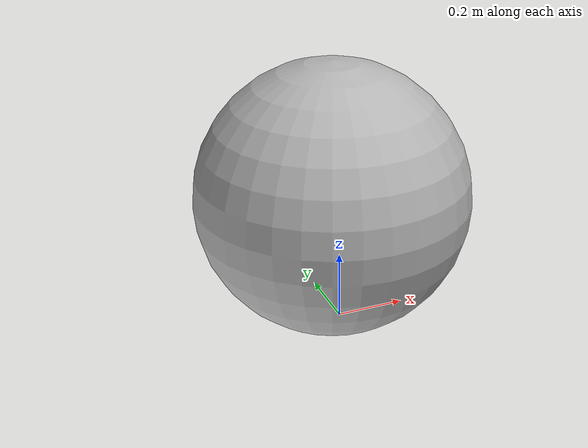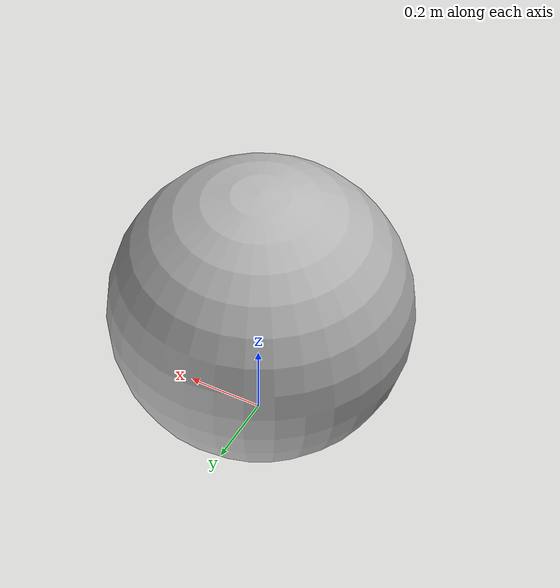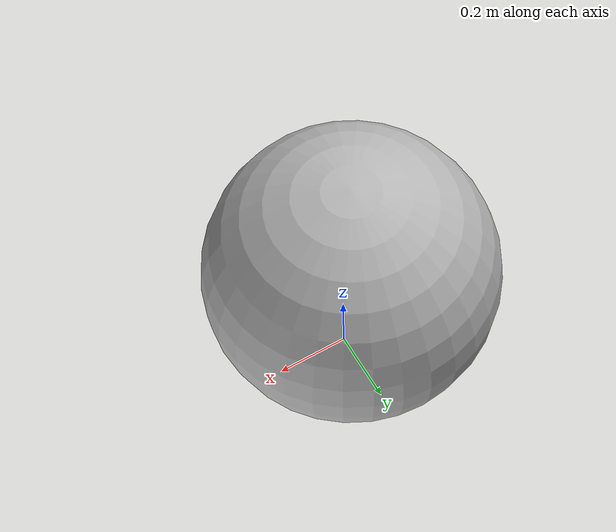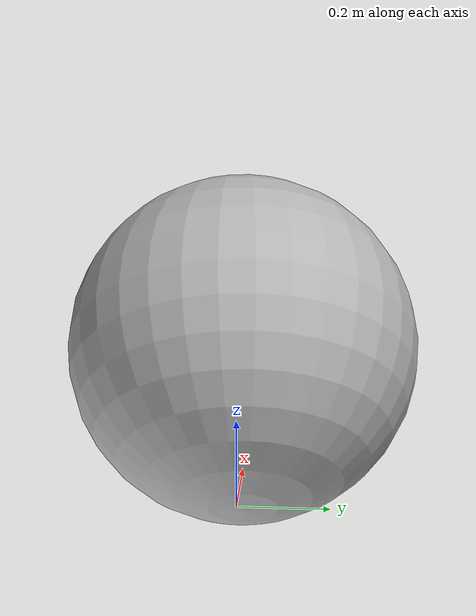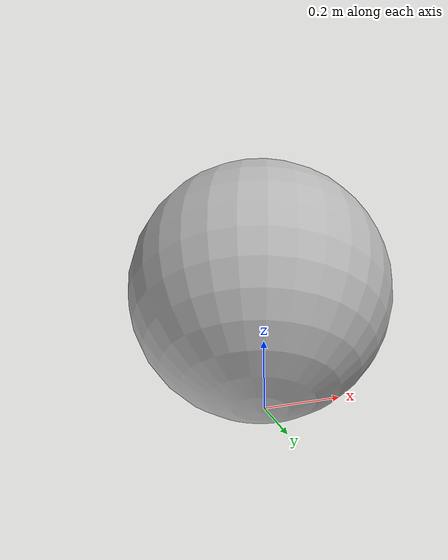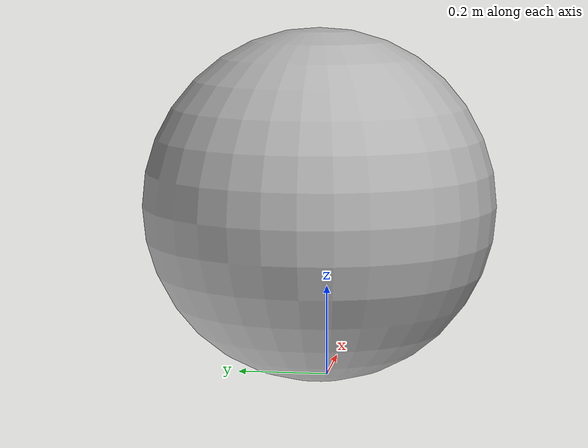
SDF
<?xml version="1.0"?>
<sdf version="1.5">
  <model name="sphere_model">
    <link name="sphere_link">
      <inertial>
        <mass>0.390</mass>
        <inertia>
          <ixx>0.00058</ixx>
          <ixy>0</ixy>
          <ixz>0</ixz>
          <iyy>0.00058</iyy>
          <iyz>0</iyz>
          <izz>0.00019</izz>
        </inertia>
      </inertial>
      <collision name="sphere_collision">
        <geometry>
          <mesh>
            <uri>model://sphere/meshes/sphere.dae</uri>
          </mesh>
        </geometry>
        <surface>
          <friction>
            <ode>
              <mu>1.0</mu>
              <mu2>1.0</mu2>
            </ode>
          </friction>
          <contact>
            <ode>
              <kp>10000000.0</kp>
              <kd>1.0</kd>
              <min_depth>0.001</min_depth>
              <max_vel>0.1</max_vel>
            </ode>
          </contact>
        </surface>
      </collision>
      <visual name="sphere_visual">
        <geometry>
          <mesh>
            <uri>model://sphere/meshes/sphere.dae</uri>
          </mesh>
        </geometry>
      </visual>
    </link>
  </model>
</sdf>
